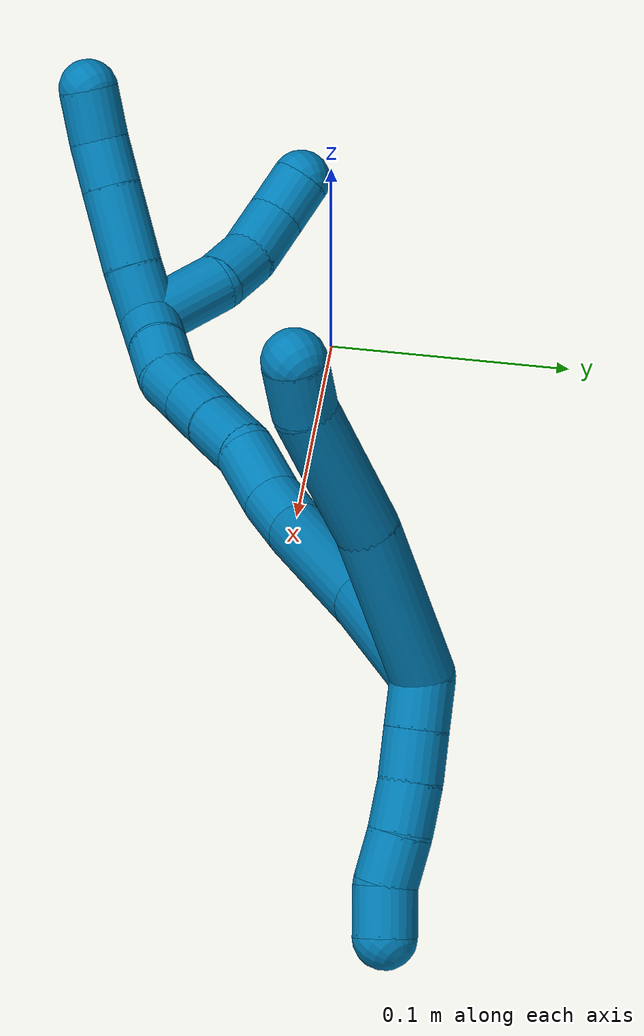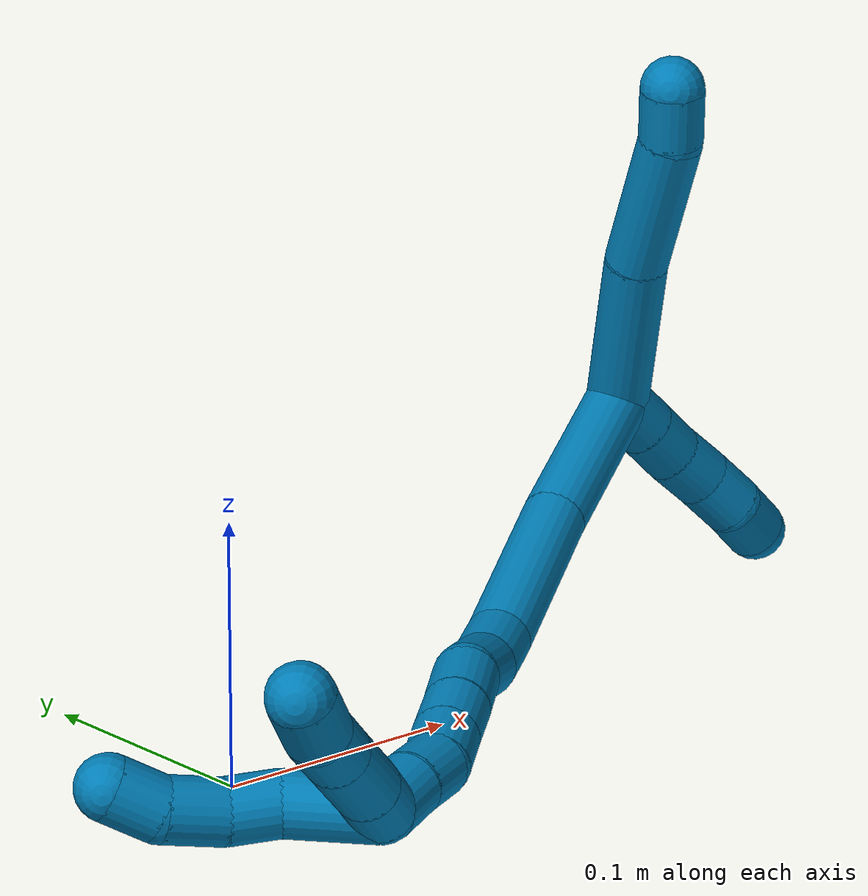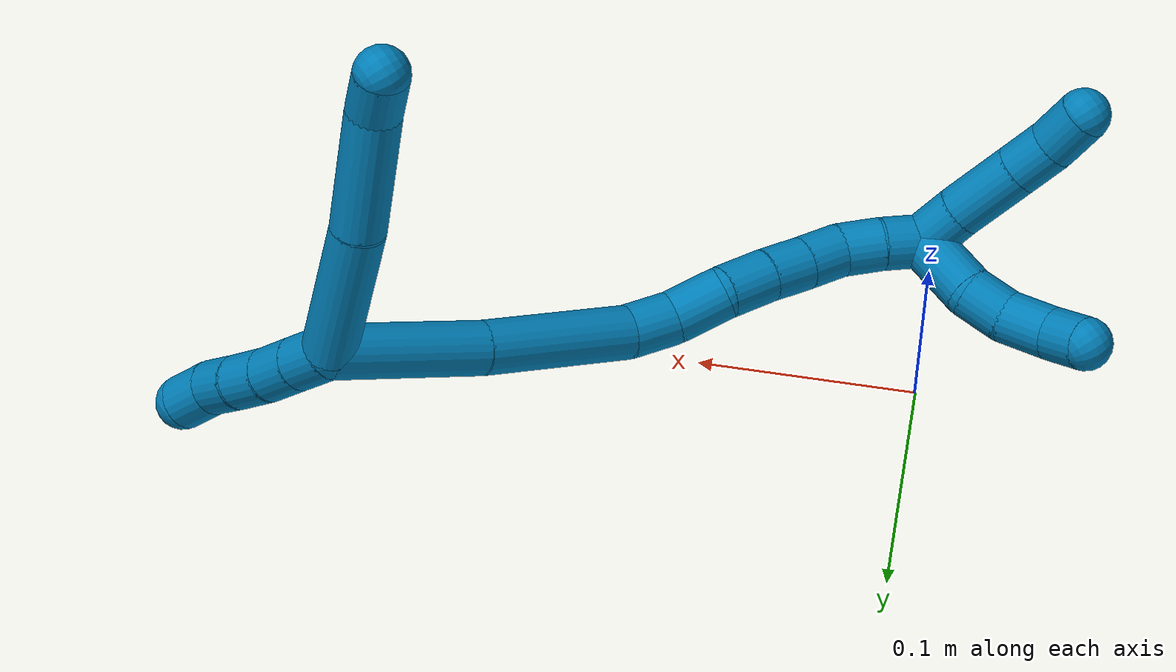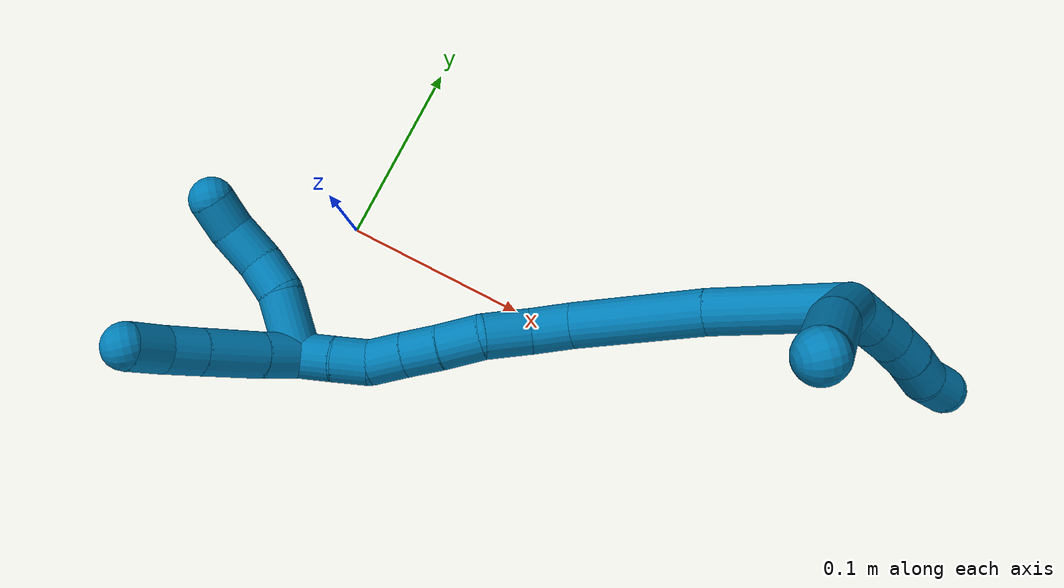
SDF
<sdf version="1.7">
 <world name="default">
  <model name="9">
   <static>0</static>
   <link name="9">
    <collision name="collision-cylinder-e_1_2_8">
     <pose>-0.010723 0.028482 0.01636 -1.04941 -0.315551 0.183661</pose>
     <geometry><cylinder><radius>0.0125</radius><length>0.069105</length></cylinder></geometry>
     <surface>
      <friction><ode><mu>1.16</mu><mu2>1.16</mu2><slip1>0</slip1><slip2>0</slip2></ode></friction>
      <contact><ode><kp>1e+06</kp><kd>1</kd><max_vel>0</max_vel><min_depth>0.001</min_depth></ode></contact>
     </surface>
    </collision>
    <visual name="visual-cylinder-e_1_2_8">
     <pose>-0.010723 0.028482 0.01636 -1.04941 -0.315551 0.183661</pose>
     <geometry><cylinder><radius>0.0125</radius><length>0.069105</length></cylinder></geometry>
     <material><ambient>0 0.490196 0.709804 1</ambient></material>
    </visual>
    <collision name="collision-cylinder-e_2_8_9">
     <pose>-0.027525 0.082482 0.045981 -1.09156 -0.208313 0.126801</pose>
     <geometry><cylinder><radius>0.0125</radius><length>0.058786</length></cylinder></geometry>
     <surface>
      <friction><ode><mu>1.16</mu><mu2>1.16</mu2><slip1>0</slip1><slip2>0</slip2></ode></friction>
      <contact><ode><kp>1e+06</kp><kd>1</kd><max_vel>0</max_vel><min_depth>0.001</min_depth></ode></contact>
     </surface>
    </collision>
    <visual name="visual-cylinder-e_2_8_9">
     <pose>-0.027525 0.082482 0.045981 -1.09156 -0.208313 0.126801</pose>
     <geometry><cylinder><radius>0.0125</radius><length>0.058786</length></cylinder></geometry>
     <material><ambient>0 0.490196 0.709804 1</ambient></material>
    </visual>
    <collision name="collision-cylinder-e_3_9_6">
     <pose>-0.038255 0.117117 0.063418 -1.14119 -0.434276 0.281318</pose>
     <geometry><cylinder><radius>0.0125</radius><length>0.022109</length></cylinder></geometry>
     <surface>
      <friction><ode><mu>1.16</mu><mu2>1.16</mu2><slip1>0</slip1><slip2>0</slip2></ode></friction>
      <contact><ode><kp>1e+06</kp><kd>1</kd><max_vel>0</max_vel><min_depth>0.001</min_depth></ode></contact>
     </surface>
    </collision>
    <visual name="visual-cylinder-e_3_9_6">
     <pose>-0.038255 0.117117 0.063418 -1.14119 -0.434276 0.281318</pose>
     <geometry><cylinder><radius>0.0125</radius><length>0.022109</length></cylinder></geometry>
     <material><ambient>0 0.490196 0.709804 1</ambient></material>
    </visual>
    <collision name="collision-cylinder-e_1_2_10">
     <pose>0.007331 -0.002842 -0.006179 2.7105 0.822835 2.21142</pose>
     <geometry><cylinder><radius>0.0125</radius><length>0.02</length></cylinder></geometry>
     <surface>
      <friction><ode><mu>1.16</mu><mu2>1.16</mu2><slip1>0</slip1><slip2>0</slip2></ode></friction>
      <contact><ode><kp>1e+06</kp><kd>1</kd><max_vel>0</max_vel><min_depth>0.001</min_depth></ode></contact>
     </surface>
    </collision>
    <visual name="visual-cylinder-e_1_2_10">
     <pose>0.007331 -0.002842 -0.006179 2.7105 0.822835 2.21142</pose>
     <geometry><cylinder><radius>0.0125</radius><length>0.02</length></cylinder></geometry>
     <material><ambient>0 0.490196 0.709804 1</ambient></material>
    </visual>
    <collision name="collision-cylinder-e_2_10_11">
     <pose>0.021959 -0.008571 -0.018556 2.7057 0.817972 2.19684</pose>
     <geometry><cylinder><radius>0.0125</radius><length>0.02</length></cylinder></geometry>
     <surface>
      <friction><ode><mu>1.16</mu><mu2>1.16</mu2><slip1>0</slip1><slip2>0</slip2></ode></friction>
      <contact><ode><kp>1e+06</kp><kd>1</kd><max_vel>0</max_vel><min_depth>0.001</min_depth></ode></contact>
     </surface>
    </collision>
    <visual name="visual-cylinder-e_2_10_11">
     <pose>0.021959 -0.008571 -0.018556 2.7057 0.817972 2.19684</pose>
     <geometry><cylinder><radius>0.0125</radius><length>0.02</length></cylinder></geometry>
     <material><ambient>0 0.490196 0.709804 1</ambient></material>
    </visual>
    <collision name="collision-cylinder-e_3_11_12">
     <pose>0.037088 -0.013743 -0.030538 2.76536 0.8996 2.39044</pose>
     <geometry><cylinder><radius>0.0125</radius><length>0.02</length></cylinder></geometry>
     <surface>
      <friction><ode><mu>1.16</mu><mu2>1.16</mu2><slip1>0</slip1><slip2>0</slip2></ode></friction>
      <contact><ode><kp>1e+06</kp><kd>1</kd><max_vel>0</max_vel><min_depth>0.001</min_depth></ode></contact>
     </surface>
    </collision>
    <visual name="visual-cylinder-e_3_11_12">
     <pose>0.037088 -0.013743 -0.030538 2.76536 0.8996 2.39044</pose>
     <geometry><cylinder><radius>0.0125</radius><length>0.02</length></cylinder></geometry>
     <material><ambient>0 0.490196 0.709804 1</ambient></material>
    </visual>
    <collision name="collision-cylinder-e_4_12_13">
     <pose>0.053233 -0.018602 -0.041245 2.65975 0.981786 2.27992</pose>
     <geometry><cylinder><radius>0.0125</radius><length>0.02</length></cylinder></geometry>
     <surface>
      <friction><ode><mu>1.16</mu><mu2>1.16</mu2><slip1>0</slip1><slip2>0</slip2></ode></friction>
      <contact><ode><kp>1e+06</kp><kd>1</kd><max_vel>0</max_vel><min_depth>0.001</min_depth></ode></contact>
     </surface>
    </collision>
    <visual name="visual-cylinder-e_4_12_13">
     <pose>0.053233 -0.018602 -0.041245 2.65975 0.981786 2.27992</pose>
     <geometry><cylinder><radius>0.0125</radius><length>0.02</length></cylinder></geometry>
     <material><ambient>0 0.490196 0.709804 1</ambient></material>
    </visual>
    <collision name="collision-cylinder-e_5_13_5">
     <pose>0.068101 -0.024345 -0.053025 2.70878 0.714622 2.0772</pose>
     <geometry><cylinder><radius>0.0125</radius><length>0.02</length></cylinder></geometry>
     <surface>
      <friction><ode><mu>1.16</mu><mu2>1.16</mu2><slip1>0</slip1><slip2>0</slip2></ode></friction>
      <contact><ode><kp>1e+06</kp><kd>1</kd><max_vel>0</max_vel><min_depth>0.001</min_depth></ode></contact>
     </surface>
    </collision>
    <visual name="visual-cylinder-e_5_13_5">
     <pose>0.068101 -0.024345 -0.053025 2.70878 0.714622 2.0772</pose>
     <geometry><cylinder><radius>0.0125</radius><length>0.02</length></cylinder></geometry>
     <material><ambient>0 0.490196 0.709804 1</ambient></material>
    </visual>
    <collision name="collision-cylinder-e_1_2_14">
     <pose>0.00123 -0.020375 0.030733 0.585433 0.033356 0.010053</pose>
     <geometry><cylinder><radius>0.0125</radius><length>0.073788</length></cylinder></geometry>
     <surface>
      <friction><ode><mu>1.16</mu><mu2>1.16</mu2><slip1>0</slip1><slip2>0</slip2></ode></friction>
      <contact><ode><kp>1e+06</kp><kd>1</kd><max_vel>0</max_vel><min_depth>0.001</min_depth></ode></contact>
     </surface>
    </collision>
    <visual name="visual-cylinder-e_1_2_14">
     <pose>0.00123 -0.020375 0.030733 0.585433 0.033356 0.010053</pose>
     <geometry><cylinder><radius>0.0125</radius><length>0.073788</length></cylinder></geometry>
     <material><ambient>0 0.490196 0.709804 1</ambient></material>
    </visual>
    <collision name="collision-cylinder-e_2_14_15">
     <pose>0.005153 -0.059081 0.093298 0.522498 0.073148 0.019565</pose>
     <geometry><cylinder><radius>0.0125</radius><length>0.073664</length></cylinder></geometry>
     <surface>
      <friction><ode><mu>1.16</mu><mu2>1.16</mu2><slip1>0</slip1><slip2>0</slip2></ode></friction>
      <contact><ode><kp>1e+06</kp><kd>1</kd><max_vel>0</max_vel><min_depth>0.001</min_depth></ode></contact>
     </surface>
    </collision>
    <visual name="visual-cylinder-e_2_14_15">
     <pose>0.005153 -0.059081 0.093298 0.522498 0.073148 0.019565</pose>
     <geometry><cylinder><radius>0.0125</radius><length>0.073664</length></cylinder></geometry>
     <material><ambient>0 0.490196 0.709804 1</ambient></material>
    </visual>
    <collision name="collision-cylinder-e_3_15_16">
     <pose>0.007993 -0.080681 0.136121 0.289045 0.012958 0.001886</pose>
     <geometry><cylinder><radius>0.0125</radius><length>0.022934</length></cylinder></geometry>
     <surface>
      <friction><ode><mu>1.16</mu><mu2>1.16</mu2><slip1>0</slip1><slip2>0</slip2></ode></friction>
      <contact><ode><kp>1e+06</kp><kd>1</kd><max_vel>0</max_vel><min_depth>0.001</min_depth></ode></contact>
     </surface>
    </collision>
    <visual name="visual-cylinder-e_3_15_16">
     <pose>0.007993 -0.080681 0.136121 0.289045 0.012958 0.001886</pose>
     <geometry><cylinder><radius>0.0125</radius><length>0.022934</length></cylinder></geometry>
     <material><ambient>0 0.490196 0.709804 1</ambient></material>
    </visual>
    <collision name="collision-cylinder-e_4_16_17">
     <pose>0.006477 -0.084311 0.160052 0.027919 -0.127844 -0.001787</pose>
     <geometry><cylinder><radius>0.0125</radius><length>0.026104</length></cylinder></geometry>
     <surface>
      <friction><ode><mu>1.16</mu><mu2>1.16</mu2><slip1>0</slip1><slip2>0</slip2></ode></friction>
      <contact><ode><kp>1e+06</kp><kd>1</kd><max_vel>0</max_vel><min_depth>0.001</min_depth></ode></contact>
     </surface>
    </collision>
    <visual name="visual-cylinder-e_4_16_17">
     <pose>0.006477 -0.084311 0.160052 0.027919 -0.127844 -0.001787</pose>
     <geometry><cylinder><radius>0.0125</radius><length>0.026104</length></cylinder></geometry>
     <material><ambient>0 0.490196 0.709804 1</ambient></material>
    </visual>
    <collision name="collision-cylinder-e_5_17_18">
     <pose>0.00622 -0.087741 0.184153 0.268317 0.120936 0.016342</pose>
     <geometry><cylinder><radius>0.0125</radius><length>0.02332</length></cylinder></geometry>
     <surface>
      <friction><ode><mu>1.16</mu><mu2>1.16</mu2><slip1>0</slip1><slip2>0</slip2></ode></friction>
      <contact><ode><kp>1e+06</kp><kd>1</kd><max_vel>0</max_vel><min_depth>0.001</min_depth></ode></contact>
     </surface>
    </collision>
    <visual name="visual-cylinder-e_5_17_18">
     <pose>0.00622 -0.087741 0.184153 0.268317 0.120936 0.016342</pose>
     <geometry><cylinder><radius>0.0125</radius><length>0.02332</length></cylinder></geometry>
     <material><ambient>0 0.490196 0.709804 1</ambient></material>
    </visual>
    <collision name="collision-cylinder-e_6_18_19">
     <pose>0.008617 -0.093983 0.204779 0.323517 0.098895 0.016151</pose>
     <geometry><cylinder><radius>0.0125</radius><length>0.020066</length></cylinder></geometry>
     <surface>
      <friction><ode><mu>1.16</mu><mu2>1.16</mu2><slip1>0</slip1><slip2>0</slip2></ode></friction>
      <contact><ode><kp>1e+06</kp><kd>1</kd><max_vel>0</max_vel><min_depth>0.001</min_depth></ode></contact>
     </surface>
    </collision>
    <visual name="visual-cylinder-e_6_18_19">
     <pose>0.008617 -0.093983 0.204779 0.323517 0.098895 0.016151</pose>
     <geometry><cylinder><radius>0.0125</radius><length>0.020066</length></cylinder></geometry>
     <material><ambient>0 0.490196 0.709804 1</ambient></material>
    </visual>
    <collision name="collision-cylinder-e_7_19_20">
     <pose>0.010727 -0.100097 0.223795 0.298676 0.11153 0.016798</pose>
     <geometry><cylinder><radius>0.0125</radius><length>0.020108</length></cylinder></geometry>
     <surface>
      <friction><ode><mu>1.16</mu><mu2>1.16</mu2><slip1>0</slip1><slip2>0</slip2></ode></friction>
      <contact><ode><kp>1e+06</kp><kd>1</kd><max_vel>0</max_vel><min_depth>0.001</min_depth></ode></contact>
     </surface>
    </collision>
    <visual name="visual-cylinder-e_7_19_20">
     <pose>0.010727 -0.100097 0.223795 0.298676 0.11153 0.016798</pose>
     <geometry><cylinder><radius>0.0125</radius><length>0.020108</length></cylinder></geometry>
     <material><ambient>0 0.490196 0.709804 1</ambient></material>
    </visual>
    <collision name="collision-cylinder-e_8_20_21">
     <pose>0.00961 -0.106192 0.242567 0.329568 -0.225432 -0.037643</pose>
     <geometry><cylinder><radius>0.0125</radius><length>0.020002</length></cylinder></geometry>
     <surface>
      <friction><ode><mu>1.16</mu><mu2>1.16</mu2><slip1>0</slip1><slip2>0</slip2></ode></friction>
      <contact><ode><kp>1e+06</kp><kd>1</kd><max_vel>0</max_vel><min_depth>0.001</min_depth></ode></contact>
     </surface>
    </collision>
    <visual name="visual-cylinder-e_8_20_21">
     <pose>0.00961 -0.106192 0.242567 0.329568 -0.225432 -0.037643</pose>
     <geometry><cylinder><radius>0.0125</radius><length>0.020002</length></cylinder></geometry>
     <material><ambient>0 0.490196 0.709804 1</ambient></material>
    </visual>
    <collision name="collision-cylinder-e_9_21_1">
     <pose>0.005542 -0.11346 0.260727 0.431343 -0.184231 -0.04047</pose>
     <geometry><cylinder><radius>0.0125</radius><length>0.020015</length></cylinder></geometry>
     <surface>
      <friction><ode><mu>1.16</mu><mu2>1.16</mu2><slip1>0</slip1><slip2>0</slip2></ode></friction>
      <contact><ode><kp>1e+06</kp><kd>1</kd><max_vel>0</max_vel><min_depth>0.001</min_depth></ode></contact>
     </surface>
    </collision>
    <visual name="visual-cylinder-e_9_21_1">
     <pose>0.005542 -0.11346 0.260727 0.431343 -0.184231 -0.04047</pose>
     <geometry><cylinder><radius>0.0125</radius><length>0.020015</length></cylinder></geometry>
     <material><ambient>0 0.490196 0.709804 1</ambient></material>
    </visual>
    <collision name="collision-cylinder-e_1_1_22">
     <pose>-0.012058 -0.125857 0.270601 1.45814 -1.08442 -0.987365</pose>
     <geometry><cylinder><radius>0.0125</radius><length>0.03567</length></cylinder></geometry>
     <surface>
      <friction><ode><mu>1.16</mu><mu2>1.16</mu2><slip1>0</slip1><slip2>0</slip2></ode></friction>
      <contact><ode><kp>1e+06</kp><kd>1</kd><max_vel>0</max_vel><min_depth>0.001</min_depth></ode></contact>
     </surface>
    </collision>
    <visual name="visual-cylinder-e_1_1_22">
     <pose>-0.012058 -0.125857 0.270601 1.45814 -1.08442 -0.987365</pose>
     <geometry><cylinder><radius>0.0125</radius><length>0.03567</length></cylinder></geometry>
     <material><ambient>0 0.490196 0.709804 1</ambient></material>
    </visual>
    <collision name="collision-cylinder-e_2_22_23">
     <pose>-0.035628 -0.139905 0.274973 1.03344 -0.860517 -0.510184</pose>
     <geometry><cylinder><radius>0.0125</radius><length>0.020584</length></cylinder></geometry>
     <surface>
      <friction><ode><mu>1.16</mu><mu2>1.16</mu2><slip1>0</slip1><slip2>0</slip2></ode></friction>
      <contact><ode><kp>1e+06</kp><kd>1</kd><max_vel>0</max_vel><min_depth>0.001</min_depth></ode></contact>
     </surface>
    </collision>
    <visual name="visual-cylinder-e_2_22_23">
     <pose>-0.035628 -0.139905 0.274973 1.03344 -0.860517 -0.510184</pose>
     <geometry><cylinder><radius>0.0125</radius><length>0.020584</length></cylinder></geometry>
     <material><ambient>0 0.490196 0.709804 1</ambient></material>
    </visual>
    <collision name="collision-cylinder-e_3_23_24">
     <pose>-0.053147 -0.149655 0.283941 0.62414 -0.958914 -0.332371</pose>
     <geometry><cylinder><radius>0.0125</radius><length>0.023739</length></cylinder></geometry>
     <surface>
      <friction><ode><mu>1.16</mu><mu2>1.16</mu2><slip1>0</slip1><slip2>0</slip2></ode></friction>
      <contact><ode><kp>1e+06</kp><kd>1</kd><max_vel>0</max_vel><min_depth>0.001</min_depth></ode></contact>
     </surface>
    </collision>
    <visual name="visual-cylinder-e_3_23_24">
     <pose>-0.053147 -0.149655 0.283941 0.62414 -0.958914 -0.332371</pose>
     <geometry><cylinder><radius>0.0125</radius><length>0.023739</length></cylinder></geometry>
     <material><ambient>0 0.490196 0.709804 1</ambient></material>
    </visual>
    <collision name="collision-cylinder-e_4_24_4">
     <pose>-0.072299 -0.15407 0.292769 0.129939 -1.23218 -0.092065</pose>
     <geometry><cylinder><radius>0.0125</radius><length>0.020007</length></cylinder></geometry>
     <surface>
      <friction><ode><mu>1.16</mu><mu2>1.16</mu2><slip1>0</slip1><slip2>0</slip2></ode></friction>
      <contact><ode><kp>1e+06</kp><kd>1</kd><max_vel>0</max_vel><min_depth>0.001</min_depth></ode></contact>
     </surface>
    </collision>
    <visual name="visual-cylinder-e_4_24_4">
     <pose>-0.072299 -0.15407 0.292769 0.129939 -1.23218 -0.092065</pose>
     <geometry><cylinder><radius>0.0125</radius><length>0.020007</length></cylinder></geometry>
     <material><ambient>0 0.490196 0.709804 1</ambient></material>
    </visual>
    <collision name="collision-cylinder-e_1_1_25">
     <pose>-0.000682 -0.113048 0.279228 -0.441919 -0.393323 0.089448</pose>
     <geometry><cylinder><radius>0.0125</radius><length>0.02291</length></cylinder></geometry>
     <surface>
      <friction><ode><mu>1.16</mu><mu2>1.16</mu2><slip1>0</slip1><slip2>0</slip2></ode></friction>
      <contact><ode><kp>1e+06</kp><kd>1</kd><max_vel>0</max_vel><min_depth>0.001</min_depth></ode></contact>
     </surface>
    </collision>
    <visual name="visual-cylinder-e_1_1_25">
     <pose>-0.000682 -0.113048 0.279228 -0.441919 -0.393323 0.089448</pose>
     <geometry><cylinder><radius>0.0125</radius><length>0.02291</length></cylinder></geometry>
     <material><ambient>0 0.490196 0.709804 1</ambient></material>
    </visual>
    <collision name="collision-cylinder-e_2_25_26">
     <pose>-0.012343 -0.102245 0.303001 -0.416066 -0.437762 0.093842</pose>
     <geometry><cylinder><radius>0.0125</radius><length>0.034303</length></cylinder></geometry>
     <surface>
      <friction><ode><mu>1.16</mu><mu2>1.16</mu2><slip1>0</slip1><slip2>0</slip2></ode></friction>
      <contact><ode><kp>1e+06</kp><kd>1</kd><max_vel>0</max_vel><min_depth>0.001</min_depth></ode></contact>
     </surface>
    </collision>
    <visual name="visual-cylinder-e_2_25_26">
     <pose>-0.012343 -0.102245 0.303001 -0.416066 -0.437762 0.093842</pose>
     <geometry><cylinder><radius>0.0125</radius><length>0.034303</length></cylinder></geometry>
     <material><ambient>0 0.490196 0.709804 1</ambient></material>
    </visual>
    <collision name="collision-cylinder-e_3_26_27">
     <pose>-0.024022 -0.092143 0.325642 -0.425664 -0.444424 0.097577</pose>
     <geometry><cylinder><radius>0.0125</radius><length>0.020509</length></cylinder></geometry>
     <surface>
      <friction><ode><mu>1.16</mu><mu2>1.16</mu2><slip1>0</slip1><slip2>0</slip2></ode></friction>
      <contact><ode><kp>1e+06</kp><kd>1</kd><max_vel>0</max_vel><min_depth>0.001</min_depth></ode></contact>
     </surface>
    </collision>
    <visual name="visual-cylinder-e_3_26_27">
     <pose>-0.024022 -0.092143 0.325642 -0.425664 -0.444424 0.097577</pose>
     <geometry><cylinder><radius>0.0125</radius><length>0.020509</length></cylinder></geometry>
     <material><ambient>0 0.490196 0.709804 1</ambient></material>
    </visual>
    <collision name="collision-cylinder-e_4_27_3">
     <pose>-0.033832 -0.082432 0.341835 -0.649126 -0.506217 0.173618</pose>
     <geometry><cylinder><radius>0.0125</radius><length>0.022278</length></cylinder></geometry>
     <surface>
      <friction><ode><mu>1.16</mu><mu2>1.16</mu2><slip1>0</slip1><slip2>0</slip2></ode></friction>
      <contact><ode><kp>1e+06</kp><kd>1</kd><max_vel>0</max_vel><min_depth>0.001</min_depth></ode></contact>
     </surface>
    </collision>
    <visual name="visual-cylinder-e_4_27_3">
     <pose>-0.033832 -0.082432 0.341835 -0.649126 -0.506217 0.173618</pose>
     <geometry><cylinder><radius>0.0125</radius><length>0.022278</length></cylinder></geometry>
     <material><ambient>0 0.490196 0.709804 1</ambient></material>
    </visual>
    <collision name="collision-sphere-3">
     <pose>-0.039233 -0.076543 0.349595 0 -0 0</pose>
     <geometry><sphere><radius>0.0125</radius></sphere></geometry>
     <surface>
      <friction><ode><mu>1.16</mu><mu2>1.16</mu2><slip1>0</slip1><slip2>0</slip2></ode></friction>
      <contact><ode><kp>1e+06</kp><kd>1</kd><max_vel>0</max_vel><min_depth>0.001</min_depth></ode></contact>
     </surface>
    </collision>
    <visual name="visual-sphere-3">
     <pose>-0.039233 -0.076543 0.349595 0 -0 0</pose>
     <geometry><sphere><radius>0.0125</radius></sphere></geometry>
     <material><ambient>0 0.490196 0.709804 1</ambient></material>
    </visual>
    <collision name="collision-sphere-27">
     <pose>-0.028431 -0.08832 0.334074 0 -0 0</pose>
     <geometry><sphere><radius>0.0125</radius></sphere></geometry>
     <surface>
      <friction><ode><mu>1.16</mu><mu2>1.16</mu2><slip1>0</slip1><slip2>0</slip2></ode></friction>
      <contact><ode><kp>1e+06</kp><kd>1</kd><max_vel>0</max_vel><min_depth>0.001</min_depth></ode></contact>
     </surface>
    </collision>
    <visual name="visual-sphere-27">
     <pose>-0.028431 -0.08832 0.334074 0 -0 0</pose>
     <geometry><sphere><radius>0.0125</radius></sphere></geometry>
     <material><ambient>0 0.490196 0.709804 1</ambient></material>
    </visual>
    <collision name="collision-sphere-26">
     <pose>-0.019614 -0.095966 0.31721 0 -0 0</pose>
     <geometry><sphere><radius>0.0125</radius></sphere></geometry>
     <surface>
      <friction><ode><mu>1.16</mu><mu2>1.16</mu2><slip1>0</slip1><slip2>0</slip2></ode></friction>
      <contact><ode><kp>1e+06</kp><kd>1</kd><max_vel>0</max_vel><min_depth>0.001</min_depth></ode></contact>
     </surface>
    </collision>
    <visual name="visual-sphere-26">
     <pose>-0.019614 -0.095966 0.31721 0 -0 0</pose>
     <geometry><sphere><radius>0.0125</radius></sphere></geometry>
     <material><ambient>0 0.490196 0.709804 1</ambient></material>
    </visual>
    <collision name="collision-sphere-25">
     <pose>-0.005072 -0.108523 0.288792 0 -0 0</pose>
     <geometry><sphere><radius>0.0125</radius></sphere></geometry>
     <surface>
      <friction><ode><mu>1.16</mu><mu2>1.16</mu2><slip1>0</slip1><slip2>0</slip2></ode></friction>
      <contact><ode><kp>1e+06</kp><kd>1</kd><max_vel>0</max_vel><min_depth>0.001</min_depth></ode></contact>
     </surface>
    </collision>
    <visual name="visual-sphere-25">
     <pose>-0.005072 -0.108523 0.288792 0 -0 0</pose>
     <geometry><sphere><radius>0.0125</radius></sphere></geometry>
     <material><ambient>0 0.490196 0.709804 1</ambient></material>
    </visual>
    <collision name="collision-sphere-4">
     <pose>-0.081734 -0.154501 0.296063 0 -0 0</pose>
     <geometry><sphere><radius>0.0125</radius></sphere></geometry>
     <surface>
      <friction><ode><mu>1.16</mu><mu2>1.16</mu2><slip1>0</slip1><slip2>0</slip2></ode></friction>
      <contact><ode><kp>1e+06</kp><kd>1</kd><max_vel>0</max_vel><min_depth>0.001</min_depth></ode></contact>
     </surface>
    </collision>
    <visual name="visual-sphere-4">
     <pose>-0.081734 -0.154501 0.296063 0 -0 0</pose>
     <geometry><sphere><radius>0.0125</radius></sphere></geometry>
     <material><ambient>0 0.490196 0.709804 1</ambient></material>
    </visual>
    <collision name="collision-sphere-24">
     <pose>-0.062863 -0.153639 0.289474 0 -0 0</pose>
     <geometry><sphere><radius>0.0125</radius></sphere></geometry>
     <surface>
      <friction><ode><mu>1.16</mu><mu2>1.16</mu2><slip1>0</slip1><slip2>0</slip2></ode></friction>
      <contact><ode><kp>1e+06</kp><kd>1</kd><max_vel>0</max_vel><min_depth>0.001</min_depth></ode></contact>
     </surface>
    </collision>
    <visual name="visual-sphere-24">
     <pose>-0.062863 -0.153639 0.289474 0 -0 0</pose>
     <geometry><sphere><radius>0.0125</radius></sphere></geometry>
     <material><ambient>0 0.490196 0.709804 1</ambient></material>
    </visual>
    <collision name="collision-sphere-23">
     <pose>-0.043432 -0.145671 0.278409 0 -0 0</pose>
     <geometry><sphere><radius>0.0125</radius></sphere></geometry>
     <surface>
      <friction><ode><mu>1.16</mu><mu2>1.16</mu2><slip1>0</slip1><slip2>0</slip2></ode></friction>
      <contact><ode><kp>1e+06</kp><kd>1</kd><max_vel>0</max_vel><min_depth>0.001</min_depth></ode></contact>
     </surface>
    </collision>
    <visual name="visual-sphere-23">
     <pose>-0.043432 -0.145671 0.278409 0 -0 0</pose>
     <geometry><sphere><radius>0.0125</radius></sphere></geometry>
     <material><ambient>0 0.490196 0.709804 1</ambient></material>
    </visual>
    <collision name="collision-sphere-22">
     <pose>-0.027825 -0.13414 0.271538 0 -0 0</pose>
     <geometry><sphere><radius>0.0125</radius></sphere></geometry>
     <surface>
      <friction><ode><mu>1.16</mu><mu2>1.16</mu2><slip1>0</slip1><slip2>0</slip2></ode></friction>
      <contact><ode><kp>1e+06</kp><kd>1</kd><max_vel>0</max_vel><min_depth>0.001</min_depth></ode></contact>
     </surface>
    </collision>
    <visual name="visual-sphere-22">
     <pose>-0.027825 -0.13414 0.271538 0 -0 0</pose>
     <geometry><sphere><radius>0.0125</radius></sphere></geometry>
     <material><ambient>0 0.490196 0.709804 1</ambient></material>
    </visual>
    <collision name="collision-sphere-1">
     <pose>0.003708 -0.117573 0.269664 0 -0 0</pose>
     <geometry><sphere><radius>0.0125</radius></sphere></geometry>
     <surface>
      <friction><ode><mu>1.16</mu><mu2>1.16</mu2><slip1>0</slip1><slip2>0</slip2></ode></friction>
      <contact><ode><kp>1e+06</kp><kd>1</kd><max_vel>0</max_vel><min_depth>0.001</min_depth></ode></contact>
     </surface>
    </collision>
    <visual name="visual-sphere-1">
     <pose>0.003708 -0.117573 0.269664 0 -0 0</pose>
     <geometry><sphere><radius>0.0125</radius></sphere></geometry>
     <material><ambient>0 0.490196 0.709804 1</ambient></material>
    </visual>
    <collision name="collision-sphere-21">
     <pose>0.007375 -0.109347 0.25179 0 -0 0</pose>
     <geometry><sphere><radius>0.0125</radius></sphere></geometry>
     <surface>
      <friction><ode><mu>1.16</mu><mu2>1.16</mu2><slip1>0</slip1><slip2>0</slip2></ode></friction>
      <contact><ode><kp>1e+06</kp><kd>1</kd><max_vel>0</max_vel><min_depth>0.001</min_depth></ode></contact>
     </surface>
    </collision>
    <visual name="visual-sphere-21">
     <pose>0.007375 -0.109347 0.25179 0 -0 0</pose>
     <geometry><sphere><radius>0.0125</radius></sphere></geometry>
     <material><ambient>0 0.490196 0.709804 1</ambient></material>
    </visual>
    <collision name="collision-sphere-11">
     <pose>0.029257 -0.011458 -0.024754 0 -0 0</pose>
     <geometry><sphere><radius>0.0125</radius></sphere></geometry>
     <surface>
      <friction><ode><mu>1.16</mu><mu2>1.16</mu2><slip1>0</slip1><slip2>0</slip2></ode></friction>
      <contact><ode><kp>1e+06</kp><kd>1</kd><max_vel>0</max_vel><min_depth>0.001</min_depth></ode></contact>
     </surface>
    </collision>
    <visual name="visual-sphere-11">
     <pose>0.029257 -0.011458 -0.024754 0 -0 0</pose>
     <geometry><sphere><radius>0.0125</radius></sphere></geometry>
     <material><ambient>0 0.490196 0.709804 1</ambient></material>
    </visual>
    <collision name="collision-sphere-10">
     <pose>0.014662 -0.005684 -0.012358 0 -0 0</pose>
     <geometry><sphere><radius>0.0125</radius></sphere></geometry>
     <surface>
      <friction><ode><mu>1.16</mu><mu2>1.16</mu2><slip1>0</slip1><slip2>0</slip2></ode></friction>
      <contact><ode><kp>1e+06</kp><kd>1</kd><max_vel>0</max_vel><min_depth>0.001</min_depth></ode></contact>
     </surface>
    </collision>
    <visual name="visual-sphere-10">
     <pose>0.014662 -0.005684 -0.012358 0 -0 0</pose>
     <geometry><sphere><radius>0.0125</radius></sphere></geometry>
     <material><ambient>0 0.490196 0.709804 1</ambient></material>
    </visual>
    <collision name="collision-sphere-6">
     <pose>-0.042906 0.126234 0.067595 0 -0 0</pose>
     <geometry><sphere><radius>0.0125</radius></sphere></geometry>
     <surface>
      <friction><ode><mu>1.16</mu><mu2>1.16</mu2><slip1>0</slip1><slip2>0</slip2></ode></friction>
      <contact><ode><kp>1e+06</kp><kd>1</kd><max_vel>0</max_vel><min_depth>0.001</min_depth></ode></contact>
     </surface>
    </collision>
    <visual name="visual-sphere-6">
     <pose>-0.042906 0.126234 0.067595 0 -0 0</pose>
     <geometry><sphere><radius>0.0125</radius></sphere></geometry>
     <material><ambient>0 0.490196 0.709804 1</ambient></material>
    </visual>
    <collision name="collision-sphere-9">
     <pose>-0.033604 0.108 0.059241 0 -0 0</pose>
     <geometry><sphere><radius>0.0125</radius></sphere></geometry>
     <surface>
      <friction><ode><mu>1.16</mu><mu2>1.16</mu2><slip1>0</slip1><slip2>0</slip2></ode></friction>
      <contact><ode><kp>1e+06</kp><kd>1</kd><max_vel>0</max_vel><min_depth>0.001</min_depth></ode></contact>
     </surface>
    </collision>
    <visual name="visual-sphere-9">
     <pose>-0.033604 0.108 0.059241 0 -0 0</pose>
     <geometry><sphere><radius>0.0125</radius></sphere></geometry>
     <material><ambient>0 0.490196 0.709804 1</ambient></material>
    </visual>
    <collision name="collision-sphere-2">
     <geometry><sphere><radius>0.0125</radius></sphere></geometry>
     <surface>
      <friction><ode><mu>1.16</mu><mu2>1.16</mu2><slip1>0</slip1><slip2>0</slip2></ode></friction>
      <contact><ode><kp>1e+06</kp><kd>1</kd><max_vel>0</max_vel><min_depth>0.001</min_depth></ode></contact>
     </surface>
    </collision>
    <visual name="visual-sphere-2">
     <geometry><sphere><radius>0.0125</radius></sphere></geometry>
     <material><ambient>0 0.490196 0.709804 1</ambient></material>
    </visual>
    <collision name="collision-sphere-19">
     <pose>0.009608 -0.097157 0.214245 0 -0 0</pose>
     <geometry><sphere><radius>0.0125</radius></sphere></geometry>
     <surface>
      <friction><ode><mu>1.16</mu><mu2>1.16</mu2><slip1>0</slip1><slip2>0</slip2></ode></friction>
      <contact><ode><kp>1e+06</kp><kd>1</kd><max_vel>0</max_vel><min_depth>0.001</min_depth></ode></contact>
     </surface>
    </collision>
    <visual name="visual-sphere-19">
     <pose>0.009608 -0.097157 0.214245 0 -0 0</pose>
     <geometry><sphere><radius>0.0125</radius></sphere></geometry>
     <material><ambient>0 0.490196 0.709804 1</ambient></material>
    </visual>
    <collision name="collision-sphere-8">
     <pose>-0.021446 0.056964 0.032721 0 -0 0</pose>
     <geometry><sphere><radius>0.0125</radius></sphere></geometry>
     <surface>
      <friction><ode><mu>1.16</mu><mu2>1.16</mu2><slip1>0</slip1><slip2>0</slip2></ode></friction>
      <contact><ode><kp>1e+06</kp><kd>1</kd><max_vel>0</max_vel><min_depth>0.001</min_depth></ode></contact>
     </surface>
    </collision>
    <visual name="visual-sphere-8">
     <pose>-0.021446 0.056964 0.032721 0 -0 0</pose>
     <geometry><sphere><radius>0.0125</radius></sphere></geometry>
     <material><ambient>0 0.490196 0.709804 1</ambient></material>
    </visual>
    <collision name="collision-sphere-12">
     <pose>0.044918 -0.016028 -0.036322 0 -0 0</pose>
     <geometry><sphere><radius>0.0125</radius></sphere></geometry>
     <surface>
      <friction><ode><mu>1.16</mu><mu2>1.16</mu2><slip1>0</slip1><slip2>0</slip2></ode></friction>
      <contact><ode><kp>1e+06</kp><kd>1</kd><max_vel>0</max_vel><min_depth>0.001</min_depth></ode></contact>
     </surface>
    </collision>
    <visual name="visual-sphere-12">
     <pose>0.044918 -0.016028 -0.036322 0 -0 0</pose>
     <geometry><sphere><radius>0.0125</radius></sphere></geometry>
     <material><ambient>0 0.490196 0.709804 1</ambient></material>
    </visual>
    <collision name="collision-sphere-13">
     <pose>0.061548 -0.021176 -0.046168 0 -0 0</pose>
     <geometry><sphere><radius>0.0125</radius></sphere></geometry>
     <surface>
      <friction><ode><mu>1.16</mu><mu2>1.16</mu2><slip1>0</slip1><slip2>0</slip2></ode></friction>
      <contact><ode><kp>1e+06</kp><kd>1</kd><max_vel>0</max_vel><min_depth>0.001</min_depth></ode></contact>
     </surface>
    </collision>
    <visual name="visual-sphere-13">
     <pose>0.061548 -0.021176 -0.046168 0 -0 0</pose>
     <geometry><sphere><radius>0.0125</radius></sphere></geometry>
     <material><ambient>0 0.490196 0.709804 1</ambient></material>
    </visual>
    <collision name="collision-sphere-5">
     <pose>0.074655 -0.027513 -0.059882 0 -0 0</pose>
     <geometry><sphere><radius>0.0125</radius></sphere></geometry>
     <surface>
      <friction><ode><mu>1.16</mu><mu2>1.16</mu2><slip1>0</slip1><slip2>0</slip2></ode></friction>
      <contact><ode><kp>1e+06</kp><kd>1</kd><max_vel>0</max_vel><min_depth>0.001</min_depth></ode></contact>
     </surface>
    </collision>
    <visual name="visual-sphere-5">
     <pose>0.074655 -0.027513 -0.059882 0 -0 0</pose>
     <geometry><sphere><radius>0.0125</radius></sphere></geometry>
     <material><ambient>0 0.490196 0.709804 1</ambient></material>
    </visual>
    <collision name="collision-sphere-14">
     <pose>0.002461 -0.040749 0.061466 0 -0 0</pose>
     <geometry><sphere><radius>0.0125</radius></sphere></geometry>
     <surface>
      <friction><ode><mu>1.16</mu><mu2>1.16</mu2><slip1>0</slip1><slip2>0</slip2></ode></friction>
      <contact><ode><kp>1e+06</kp><kd>1</kd><max_vel>0</max_vel><min_depth>0.001</min_depth></ode></contact>
     </surface>
    </collision>
    <visual name="visual-sphere-14">
     <pose>0.002461 -0.040749 0.061466 0 -0 0</pose>
     <geometry><sphere><radius>0.0125</radius></sphere></geometry>
     <material><ambient>0 0.490196 0.709804 1</ambient></material>
    </visual>
    <collision name="collision-sphere-15">
     <pose>0.007844 -0.077413 0.12513 0 -0 0</pose>
     <geometry><sphere><radius>0.0125</radius></sphere></geometry>
     <surface>
      <friction><ode><mu>1.16</mu><mu2>1.16</mu2><slip1>0</slip1><slip2>0</slip2></ode></friction>
      <contact><ode><kp>1e+06</kp><kd>1</kd><max_vel>0</max_vel><min_depth>0.001</min_depth></ode></contact>
     </surface>
    </collision>
    <visual name="visual-sphere-15">
     <pose>0.007844 -0.077413 0.12513 0 -0 0</pose>
     <geometry><sphere><radius>0.0125</radius></sphere></geometry>
     <material><ambient>0 0.490196 0.709804 1</ambient></material>
    </visual>
    <collision name="collision-sphere-16">
     <pose>0.008142 -0.083949 0.147111 0 -0 0</pose>
     <geometry><sphere><radius>0.0125</radius></sphere></geometry>
     <surface>
      <friction><ode><mu>1.16</mu><mu2>1.16</mu2><slip1>0</slip1><slip2>0</slip2></ode></friction>
      <contact><ode><kp>1e+06</kp><kd>1</kd><max_vel>0</max_vel><min_depth>0.001</min_depth></ode></contact>
     </surface>
    </collision>
    <visual name="visual-sphere-16">
     <pose>0.008142 -0.083949 0.147111 0 -0 0</pose>
     <geometry><sphere><radius>0.0125</radius></sphere></geometry>
     <material><ambient>0 0.490196 0.709804 1</ambient></material>
    </visual>
    <collision name="collision-sphere-17">
     <pose>0.004813 -0.084672 0.172992 0 -0 0</pose>
     <geometry><sphere><radius>0.0125</radius></sphere></geometry>
     <surface>
      <friction><ode><mu>1.16</mu><mu2>1.16</mu2><slip1>0</slip1><slip2>0</slip2></ode></friction>
      <contact><ode><kp>1e+06</kp><kd>1</kd><max_vel>0</max_vel><min_depth>0.001</min_depth></ode></contact>
     </surface>
    </collision>
    <visual name="visual-sphere-17">
     <pose>0.004813 -0.084672 0.172992 0 -0 0</pose>
     <geometry><sphere><radius>0.0125</radius></sphere></geometry>
     <material><ambient>0 0.490196 0.709804 1</ambient></material>
    </visual>
    <collision name="collision-sphere-18">
     <pose>0.007627 -0.090809 0.195313 0 -0 0</pose>
     <geometry><sphere><radius>0.0125</radius></sphere></geometry>
     <surface>
      <friction><ode><mu>1.16</mu><mu2>1.16</mu2><slip1>0</slip1><slip2>0</slip2></ode></friction>
      <contact><ode><kp>1e+06</kp><kd>1</kd><max_vel>0</max_vel><min_depth>0.001</min_depth></ode></contact>
     </surface>
    </collision>
    <visual name="visual-sphere-18">
     <pose>0.007627 -0.090809 0.195313 0 -0 0</pose>
     <geometry><sphere><radius>0.0125</radius></sphere></geometry>
     <material><ambient>0 0.490196 0.709804 1</ambient></material>
    </visual>
    <collision name="collision-sphere-20">
     <pose>0.011846 -0.103037 0.233344 0 -0 0</pose>
     <geometry><sphere><radius>0.0125</radius></sphere></geometry>
     <surface>
      <friction><ode><mu>1.16</mu><mu2>1.16</mu2><slip1>0</slip1><slip2>0</slip2></ode></friction>
      <contact><ode><kp>1e+06</kp><kd>1</kd><max_vel>0</max_vel><min_depth>0.001</min_depth></ode></contact>
     </surface>
    </collision>
    <visual name="visual-sphere-20">
     <pose>0.011846 -0.103037 0.233344 0 -0 0</pose>
     <geometry><sphere><radius>0.0125</radius></sphere></geometry>
     <material><ambient>0 0.490196 0.709804 1</ambient></material>
    </visual>
    <inertial>
     <pose>-0.004464 -0.04804 0.134205 0 -0 0</pose>
     <mass>0.75</mass>
     <inertia>
      <ixx>0.000146</ixx>
      <ixy>0</ixy>
      <ixz>0</ixz>
      <iyy>0.000133</iyy>
      <iyz>0</iyz>
      <izz>4.8e-05</izz>
     </inertia>
    </inertial>
   </link>
   <pose>0.252638 0.070678 0.079808 1.42026 0.506792 -0.915802</pose>
  </model>
 </world>
</sdf>
